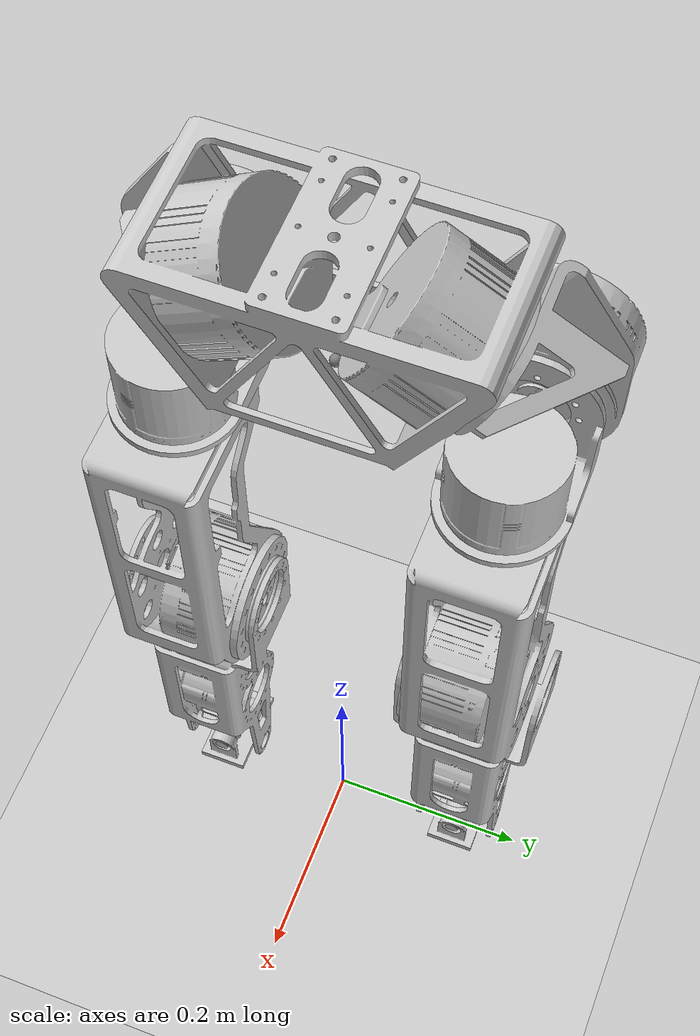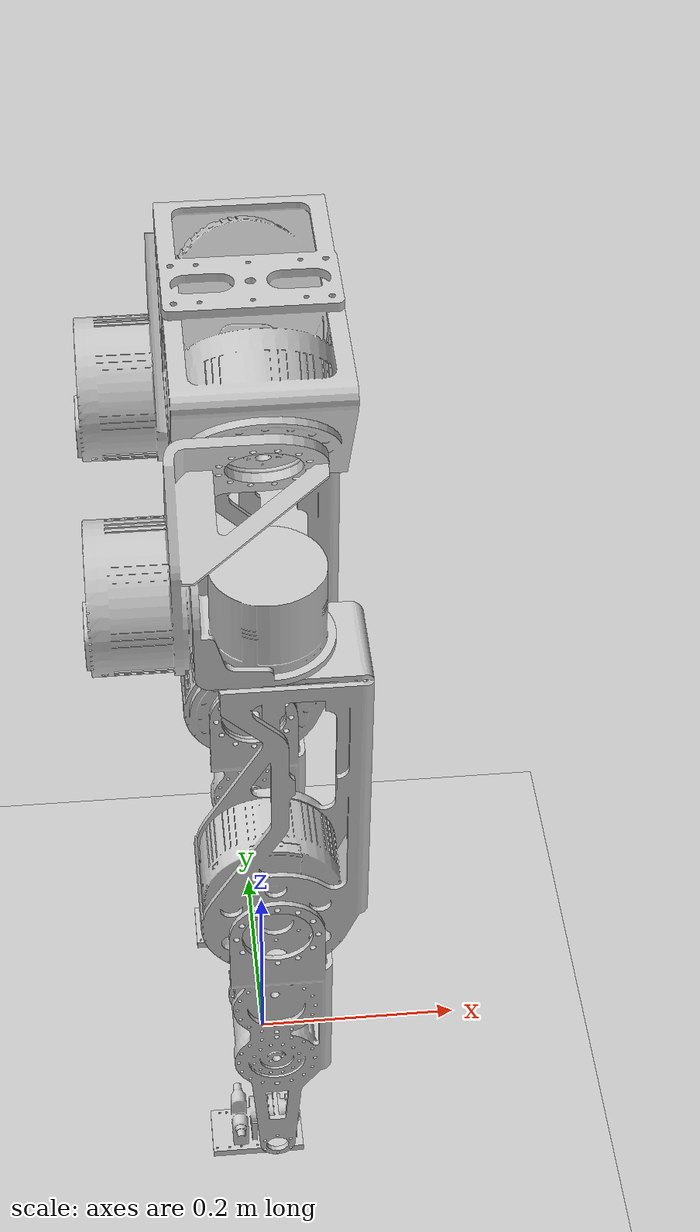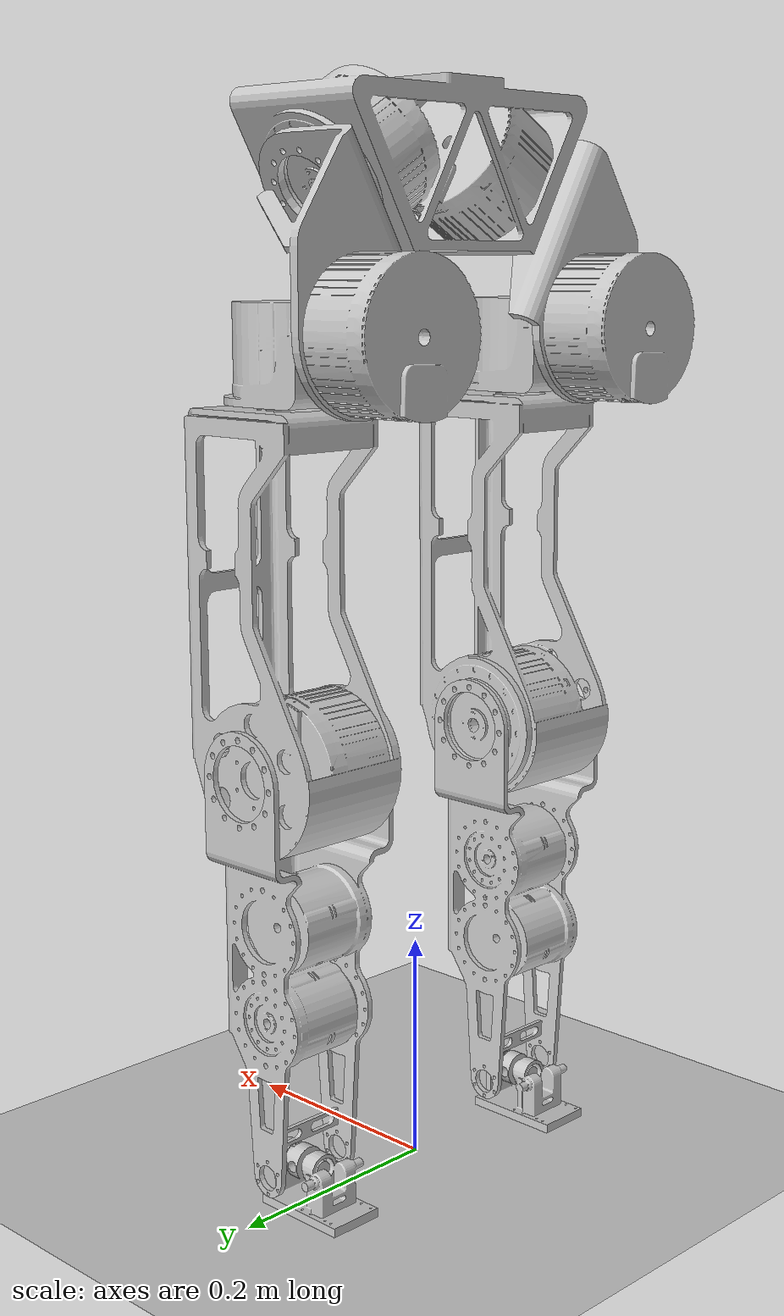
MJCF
<mujoco model="scene_speed160">
<include file="speed160.xml"/>

<statistic center="0 0 0.1" extent="0.8"/>

<visual>
  <headlight diffuse="0.6 0.6 0.6" ambient="0.3 0.3 0.3" specular="0 0 0"/>
  <rgba haze="0.15 0.25 0.35 1"/>
  <global azimuth="150" elevation="-20"/>
</visual>

<asset>
  <texture type="skybox" builtin="gradient" rgb1="0.3 0.5 0.7" rgb2="0 0 0" width="512" height="3072"/>
  <texture type="2d" name="groundplane" builtin="checker" mark="edge" rgb1="0.2 0.3 0.4" rgb2="0.1 0.2 0.3"
           markrgb="0.8 0.8 0.8" width="300" height="300"/>
  <material name="groundplane" texture="groundplane" texuniform="true" texrepeat="5 5" reflectance="0.2"/>
</asset>

<worldbody>
  <light pos="0 0 1.5" dir="0 0 -1" directional="true"/>
  <geom name="floor" size="0 0 1" pos="0 0 0" type="plane" material="groundplane"/>
</worldbody>
</mujoco>

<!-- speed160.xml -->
<mujoco model="Speed160">
  <compiler angle="radian" meshdir="speed160/meshes/"/>
    <option timestep="0.001" tolerance="1e-10" solver="Newton" jacobian="dense" cone="pyramidal" gravity="0 0 -9.81">
        <flag contact="enable" energy="enable"/>
    </option>
    <size njmax="500" nconmax="1000" />
    <default>
        <light castshadow="false" />
        <geom rgba="0.784 0.784 0.784 1"/>
        <default class="visual">
            <geom contype="0" conaffinity="0" group="1" type="mesh" />
        </default>
        <default class="collision">
            <geom contype="1" conaffinity="1" friction="1.0 0.3 0.3"
                margin="0.001" group="0" />
        </default>
        <joint damping="0.1" frictionloss="2" armature="0.01"/>
    </default>
  <asset>
    <mesh name="base_link" file="base_link.STL"/>
    <mesh name="Link_hip_r_pitch" file="right_hip_pitch.STL"/>
    <mesh name="Link_hip_r_roll" file="right_hip_roll.STL"/>
    <mesh name="Link_hip_r_yaw" file="right_hip_yaw.STL"/>
    <mesh name="Link_knee_r_pitch" file="right_knee.STL"/>
    <mesh name="Link_ankle_r_pitch" file="right_ankle_pitch.STL"/>
    <mesh name="Link_ankle_r_roll" file="right_ankle_roll.STL"/>
    <mesh name="Link_hip_l_pitch" file="left_hip_pitch.STL"/>
    <mesh name="Link_hip_l_roll" file="left_hip_roll.STL"/>
    <mesh name="Link_hip_l_yaw" file="left_hip_yaw.STL"/>
    <mesh name="Link_knee_l_pitch" file="left_knee.STL"/>
    <mesh name="Link_ankle_l_pitch" file="left_ankle_pitch.STL"/>
    <mesh name="Link_ankle_l_roll" file="left_ankle_roll.STL"/>
  </asset>
  <worldbody>
   <body name="base_link" pos="0 0 0.80" euler="0 0 0">
    <freejoint name="float_base" />
    <inertial pos="0 0 0.076322" mass="7.2549" fullinertia="0.028957 0.01703 0.030167 0 0 0" />
    <geom type="mesh" contype="0" conaffinity="0" group="1" density="0" mesh="base_link"/>
    <geom type="mesh" mesh="base_link"/>
    <site name="imu" quat="1 0 0 0"/>

    <!-- ==================== RIGHT LEG ==================== -->
    <body name="Link_hip_r_pitch" pos="0 -0.074354 0.069542">
      <inertial pos="-0.084061 -0.058399 -0.10445" mass="3.8012" fullinertia="0.0092356 0.0081435 0.0065418 -0.00041669 -0.00083241 0.00012225"/>
      <joint name="J_hip_r_pitch" pos="0 0 0" axis="0 0.86603 0.5" limited="true" range="-2.618 2.618" armature="0.000346"/>
      <geom type="mesh" contype="0" conaffinity="0" group="1" density="0" mesh="Link_hip_r_pitch"/>
      <geom type="mesh" mesh="Link_hip_r_pitch"/>
      <body name="Link_hip_r_roll" pos="-0.104 -0.060646 -0.13264">
        <inertial pos="0.092261 0 -0.018654" mass="2.198" fullinertia="0.0030256 0.0030613 0.0032475 0 0.00041018 0"/>
        <joint name="J_hip_r_roll" pos="0 0 0" axis="1 0 0" limited="true" range="-2.094 0.8727" armature="0.000346"/>
        <geom type="mesh" contype="0" conaffinity="0" group="1" density="0" mesh="Link_hip_r_roll"/>
        <geom type="mesh" mesh="Link_hip_r_roll"/>
        <body name="Link_hip_r_yaw" pos="0.1045 0 -0.0135">
          <inertial pos="0.013525 0.0064029 -0.27472" mass="4.9199" fullinertia="0.038644 0.04081 0.012657 -0.00038539 -0.00065051 -0.0018953"/>
          <joint name="J_hip_r_yaw" pos="0 0 0" axis="0 0 1" limited="true" range="-2.618 2.618" armature="0.00011"/>
          <geom type="mesh" contype="0" conaffinity="0" group="1" density="0" mesh="Link_hip_r_yaw"/>
          <geom type="mesh" mesh="Link_hip_r_yaw"/>
          <body name="Link_knee_r_pitch" pos="0 0.0185 -0.3395">
            <inertial pos="0.0054816 -0.0185 -0.15453" mass="3.3922" fullinertia="0.020574 0.018277 0.0063665 0 0.00031949 0"/>
            <joint name="J_knee_r_pitch" pos="0 0 0" axis="0 1 0" limited="true" range="-0.087 2.583" armature="0.000346"/>
            <geom type="mesh" contype="0" conaffinity="0" group="1" density="0" mesh="Link_knee_r_pitch"/>
            <geom type="mesh" mesh="Link_knee_r_pitch"/>
            <body name="Link_ankle_r_pitch" pos="0 -0.0185 -0.347">
              <inertial pos="-0.016544 0 -0.022535" mass="0.65223" fullinertia="0.000169 0.00035201 0.00040372 0 -2.0792e-05 0"/>
              <joint name="J_ankle_r_pitch" pos="0 0 0" axis="0 1 0" limited="true" range="-1.012 0.611" armature="0.000052"/>
              <geom type="mesh" contype="0" conaffinity="0" group="1" density="0" mesh="Link_ankle_r_pitch"/>
              <geom type="mesh" mesh="Link_ankle_r_pitch"/>
              <body name="Link_ankle_r_roll">
                <inertial pos="0.0083987 -0.00011282 -0.045" mass="0.48193" fullinertia="0.00025681 0.0021729 0.0024217 0 0 0"/>
                <joint name="J_ankle_r_roll" pos="0 0 0" axis="1 0 0" limited="true" range="-0.436 0.436" armature="0.000052"/>
                <geom type="mesh" contype="0" conaffinity="0" group="1" density="0" mesh="Link_ankle_r_roll"/>
                <geom type="box" condim="4" friction="1 1 1" rgba="1 0 0 0" pos="0.0066 -0.0001 -0.045" size="0.115 0.045 0.01"/>
                <site name="rf-tc" type="box" size="0.116 0.046 0.011" pos="0.0066 -0.0001 -0.045" rgba="0 1 0 0"/>
              </body>
            </body>
          </body>
        </body>
      </body>
    </body>

    <!-- ==================== LEFT LEG ==================== -->
    <body name="Link_hip_l_pitch" pos="0 0.074354 0.069542">
      <inertial pos="-0.084061 0.058399 -0.10445" mass="3.8012" fullinertia="0.0092356 0.0081435 0.0065418 0.00041669 -0.00083241 -0.00012225"/>
      <joint name="J_hip_l_pitch" pos="0 0 0" axis="0 0.86603 -0.5" limited="true" range="-2.618 2.618" armature="0.000346"/>
      <geom type="mesh" contype="0" conaffinity="0" group="1" density="0" mesh="Link_hip_l_pitch"/>
      <geom type="mesh" mesh="Link_hip_l_pitch"/>
      <body name="Link_hip_l_roll" pos="-0.104 0.060646 -0.13264">
        <inertial pos="0.09226 0 -0.018654" mass="2.198" fullinertia="0.0030256 0.0030613 0.0032475 0 0.00041018 0"/>
        <joint name="J_hip_l_roll" pos="0 0 0" axis="1 0 0" limited="true" range="-0.8727 2.094" armature="0.000346"/>
        <geom type="mesh" contype="0" conaffinity="0" group="1" density="0" mesh="Link_hip_l_roll"/>
        <geom type="mesh" mesh="Link_hip_l_roll"/>
        <body name="Link_hip_l_yaw" pos="0.1045 0 -0.0135">
          <inertial pos="0.013527 -0.006402 -0.27472" mass="4.9199" fullinertia="0.038644 0.04081 0.012657 0.00038538 -0.00065049 0.0018953"/>
          <joint name="J_hip_l_yaw" pos="0 0 0" axis="0 0 1" limited="true" range="-2.618 2.618" armature="0.00011"/>
          <geom type="mesh" contype="0" conaffinity="0" group="1" density="0" mesh="Link_hip_l_yaw"/>
          <geom type="mesh" mesh="Link_hip_l_yaw"/>
          <body name="Link_knee_l_pitch" pos="0 -0.018499 -0.3395">
            <inertial pos="0.0054816 0.0185 -0.15453" mass="3.3922" fullinertia="0.020574 0.018277 0.0063665 0 0.00031949 0"/>
            <joint name="J_knee_l_pitch" pos="0 0 0" axis="0 1 0" limited="true" range="-0.087 2.583" armature="0.000346"/>
            <geom type="mesh" contype="0" conaffinity="0" group="1" density="0" mesh="Link_knee_l_pitch"/>
            <geom type="mesh" mesh="Link_knee_l_pitch"/>
            <body name="Link_ankle_l_pitch" pos="0 0.018726 -0.347">
              <inertial pos="-0.016544 0 -0.022535" mass="0.65223" fullinertia="0.000169 0.00035201 0.00040372 0 -2.0792e-05 0"/>
              <joint name="J_ankle_l_pitch" pos="0 0 0" axis="0 1 0" limited="true" range="-1.012 0.611" armature="0.000052"/>
              <geom type="mesh" contype="0" conaffinity="0" group="1" density="0" mesh="Link_ankle_l_pitch"/>
              <geom type="mesh" mesh="Link_ankle_l_pitch"/>
              <body name="Link_ankle_l_roll">
                <inertial pos="0.0083987 -0.00011282 -0.045" mass="0.48193" fullinertia="0.00025681 0.0021729 0.0024217 0 0 0"/>
                <joint name="J_ankle_l_roll" pos="0 0 0" axis="1 0 0" limited="true" range="-0.436 0.436" armature="0.000052"/>
                <geom type="mesh" contype="0" conaffinity="0" group="1" density="0" mesh="Link_ankle_l_roll"/>
                <geom type="box" condim="4" friction="1 1 1" rgba="1 0 0 0" pos="0.0066 -0.0001 -0.045" size="0.115 0.045 0.01"/>
                <site name="lf-tc" type="box" size="0.116 0.046 0.011" pos="0.0066 -0.0001 -0.045" rgba="0 1 0 0"/>
              </body>
            </body>
          </body>
        </body>
      </body>
    </body>
   </body>
  </worldbody>
  <contact>
      <exclude name="ex_baselink_r_hip_pitch" body1="base_link" body2="Link_hip_r_pitch"/>
      <exclude name="ex_r_hip_pitch_hip_roll" body1="Link_hip_r_pitch" body2="Link_hip_r_roll"/>
      <exclude name="ex_r_hip_roll_hip_yaw" body1="Link_hip_r_roll" body2="Link_hip_r_yaw"/>
      <exclude name="ex_r_hip_yaw_knee_pitch" body1="Link_hip_r_yaw" body2="Link_knee_r_pitch"/>
      <exclude name="ex_r_knee_pitch_ankle_pitch" body1="Link_knee_r_pitch" body2="Link_ankle_r_pitch"/>
      <exclude name="ex_r_ankle_pitch_ankle_roll" body1="Link_ankle_r_pitch" body2="Link_ankle_r_roll"/>
      <exclude name="ex_r_knee_pitch_ankle_roll" body1="Link_knee_r_pitch" body2="Link_ankle_r_roll"/>

      <exclude name="ex_baselink_l_hip_pitch" body1="base_link" body2="Link_hip_l_pitch"/>
      <exclude name="ex_l_hip_pitch_hip_roll" body1="Link_hip_l_pitch" body2="Link_hip_l_roll"/>
      <exclude name="ex_l_hip_roll_hip_yaw" body1="Link_hip_l_roll" body2="Link_hip_l_yaw"/>
      <exclude name="ex_l_hip_yaw_knee_pitch" body1="Link_hip_l_yaw" body2="Link_knee_l_pitch"/>
      <exclude name="ex_l_knee_pitch_ankle_pitch" body1="Link_knee_l_pitch" body2="Link_ankle_l_pitch"/>
      <exclude name="ex_l_ankle_pitch_ankle_roll" body1="Link_ankle_l_pitch" body2="Link_ankle_l_roll"/>
      <exclude name="ex_l_knee_pitch_ankle_roll" body1="Link_knee_l_pitch" body2="Link_ankle_l_roll"/>

      <exclude name="ex_baselink_r_hip_roll" body1="base_link" body2="Link_hip_r_roll"/>
      <exclude name="ex_baselink_l_hip_roll" body1="base_link" body2="Link_hip_l_roll"/>
  </contact>
  <actuator>
      <motor name="M_hip_r_pitch"    joint="J_hip_r_pitch"    gear="1" ctrllimited="true" ctrlrange="-140 140"/>
      <motor name="M_hip_r_roll"     joint="J_hip_r_roll"     gear="1" ctrllimited="true" ctrlrange="-140 140"/>
      <motor name="M_hip_r_yaw"      joint="J_hip_r_yaw"      gear="1" ctrllimited="true" ctrlrange="-140 140"/>
      <motor name="M_knee_r_pitch"   joint="J_knee_r_pitch"   gear="1" ctrllimited="true" ctrlrange="-140 140"/>
      <motor name="M_ankle_r_pitch"  joint="J_ankle_r_pitch"  gear="1" ctrllimited="true" ctrlrange="-42 42"/>
      <motor name="M_ankle_r_roll"   joint="J_ankle_r_roll"   gear="1" ctrllimited="true" ctrlrange="-42 42"/>
      <motor name="M_hip_l_pitch"    joint="J_hip_l_pitch"    gear="1" ctrllimited="true" ctrlrange="-140 140"/>
      <motor name="M_hip_l_roll"     joint="J_hip_l_roll"     gear="1" ctrllimited="true" ctrlrange="-140 140"/>
      <motor name="M_hip_l_yaw"      joint="J_hip_l_yaw"      gear="1" ctrllimited="true" ctrlrange="-140 140"/>
      <motor name="M_knee_l_pitch"   joint="J_knee_l_pitch"   gear="1" ctrllimited="true" ctrlrange="-140 140"/>
      <motor name="M_ankle_l_pitch"  joint="J_ankle_l_pitch"  gear="1" ctrllimited="true" ctrlrange="-42 42"/>
      <motor name="M_ankle_l_roll"   joint="J_ankle_l_roll"   gear="1" ctrllimited="true" ctrlrange="-42 42"/>
  </actuator>
  <sensor>
      <framequat name="baselink-quat" objtype="site" objname="imu" />
      <velocimeter name="baselink-velocity" site="imu" />
      <gyro name="baselink-gyro" site="imu" />
      <accelerometer name="baselink-baseAcc" site="imu" />
      <touch name="lf-touch" site="lf-tc" />
      <touch name="rf-touch" site="rf-tc" />
  </sensor>
</mujoco>
